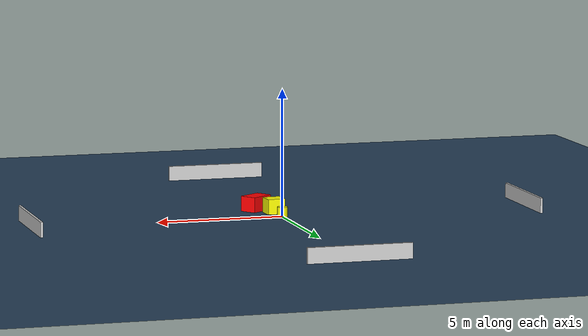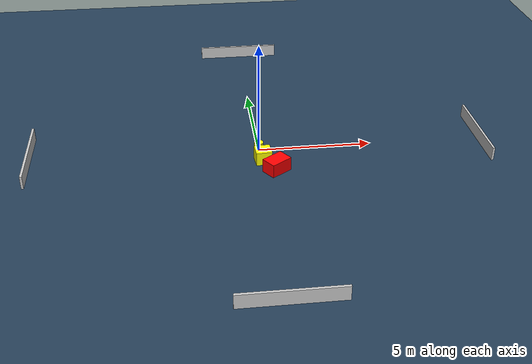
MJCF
<?xml version="1.0" ?>
<mujoco model="generated_environment">
  <option timestep="0.01" integrator="RK4" cone="elliptic"/>
  <default>
    <geom density="1"/>
  </default>
  <asset>
    <texture builtin="gradient" height="3072" name="skybox" rgb1="0.3 0.5 0.7" rgb2="0 0 0" type="skybox" width="512"/>
    <texture builtin="checker" height="300" name="groundplane" rgb1="0.2 0.3 0.4" rgb2="0.1 0.2 0.3" type="2d" width="300"/>
    <material name="groundplane" reflectance="0.2" texrepeat="5 5" texture="groundplane"/>
  </asset>
  <worldbody>
    <light dir="0 0 -1" directional="true" pos="0 0 1.5"/>
    <geom condim="3" friction="0.5 0.005 0.001" material="groundplane" name="floor" pos="0 0 0" size="0 0 0.05" type="plane"/>
    <body name="walls">
      <geom name="wall_1" condim="4" pos="-10.0 0.0 0.3" rgba="0.800000011920929 0.800000011920929 0.800000011920929 1.0" size="0.05 2.0 0.3" type="box"/>
      <geom name="wall_2" condim="4" pos="10.0 0.0 0.3" rgba="0.800000011920929 0.800000011920929 0.800000011920929 1.0" size="0.05 2.0 0.3" type="box"/>
      <geom name="wall_3" condim="4" pos="0.0 -10.0 0.3" rgba="0.800000011920929 0.800000011920929 0.800000011920929 1.0" size="2.0 0.05 0.3" type="box"/>
      <geom name="wall_4" condim="4" pos="0.0 10.0 0.3" rgba="0.800000011920929 0.800000011920929 0.800000011920929 1.0" size="2.0 0.05 0.3" type="box"/>
    </body>
    <body name="robot">
      <joint name="joint_x" type="slide" pos="0 0 0" axis="1 0 0"/>
      <joint name="joint_y" type="slide" pos="0 0 0" axis="0 1 0"/>
      <geom name="robot" type="cylinder" pos="0.0 0.0 0.2" size="0.2 0.2 0.0" mass="5.0" friction="1.0 0.005 0.0001" condim="4" rgba="1.0 1.0 0.0 1.0"/>
    </body>
    <body name="obstacle_1_movable">
      <geom name="obstacle_1_movable" condim="4" pos="0.07434438426427631 -0.950028528547469 0.3" euler="0 0 3.9834055135949775" friction="0.0 0.005 0.001" rgba="1.0 1.0 0.0 1.0" size="0.3452540465016348 0.3323333223868967 0.3" type="box" mass="0.1"/>
      <joint type="free"/>
    </body>
    <body name="obstacle_2_static">
      <geom name="obstacle_2_static" condim="4" pos="0.5734275383174472 -1.7668881955970275 0.3" euler="0 0 214.75354851129543" friction="0.0 0.005 0.001" rgba="1.0 0.0 0.0 1.0" size="0.5066119869102519 0.34362458426082554 0.3" type="box"/>
    </body>
  </worldbody>
  <actuator>
    <motor name="actuator_x" joint="joint_x" gear="1" ctrlrange="-1 1"/>
    <motor name="actuator_y" joint="joint_y" gear="1" ctrlrange="-1 1"/>
  </actuator>
</mujoco>
